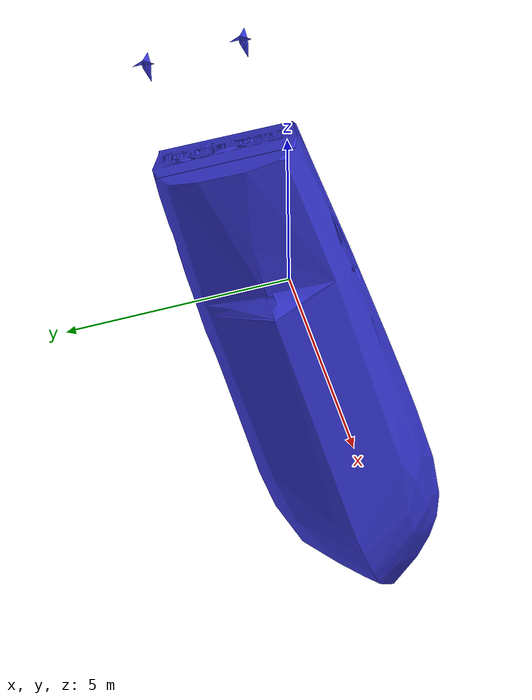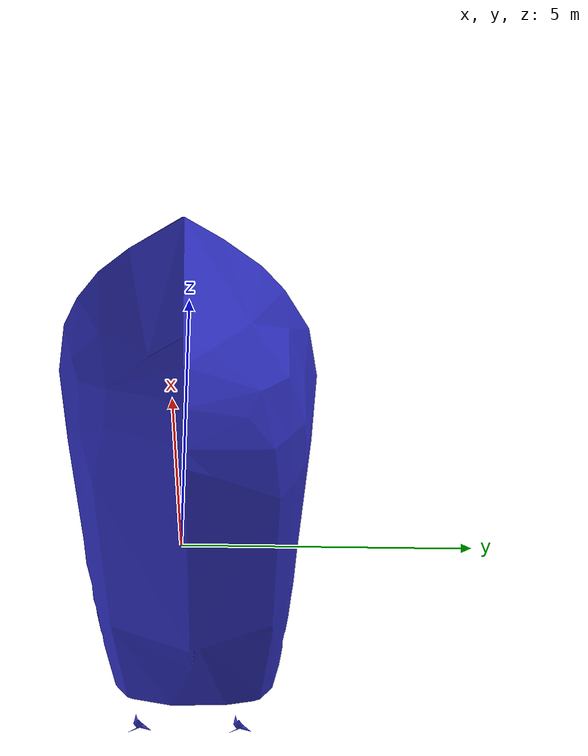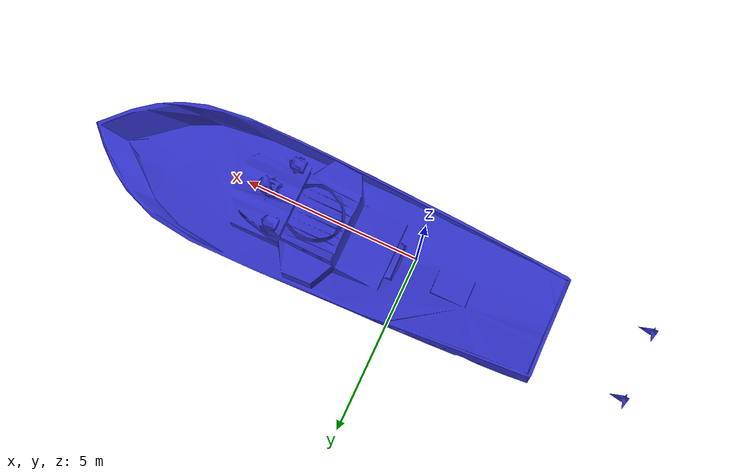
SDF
<?xml version="1.0" ?>
<sdf version="1.9">
  <model name="vessel_v3">
    <link name="base_link">
      <inertial>
        <mass>55000.0</mass>
        <pose>0 0 0.0 0 0 0</pose>
        <inertia>
          <ixx>146366.0</ixx>
          <iyy>805620.0</iyy>
          <izz>913838.0</izz>
          <ixy>0.0000001</ixy> <ixz>0.0000001</ixz> <iyz>0.0000001</iyz>
        </inertia>
      </inertial>

      <collision name="collision_hull">
        <pose>0 0 0.0 0 0 0</pose>
        <geometry>
          <box><size>13.11 5.27 2.04</size></box>
        </geometry>
      </collision>

      <visual name="visual_hull">
        <pose>0.0 0 0.0 0 0 0</pose>
        <geometry>
          <mesh>
          <uri>model://vessel_v3/meshes/vessel_simplified.stl</uri>
          <scale>0.0556 0.0556 0.0556</scale>
          </mesh>
        </geometry>
        <material>
          <ambient>0.2 0.2 0.8 1.0</ambient>
          <diffuse>0.2 0.2 0.8 1.0</diffuse>
        </material>
      </visual>
    </link>

    <link name="left_propeller">
      <pose>-6.6 -1.0 -0.8 0 0 0</pose>
      <inertial>
        <mass>0.5</mass>
        <inertia>
          <ixx>0.001</ixx><iyy>0.001</iyy><izz>0.001</izz>
          <ixy>0.000000001</ixy><ixz>0.0000000001</ixz><iyz>0.0000000001</iyz>
        </inertia>
      </inertial>

      <visual name="left_prop_visual">
        <pose>0.0 0.0 0.0 0 0 3.14</pose>
        <geometry>
          <mesh>
            <uri>model://vessel_v3/meshes/vessel_propeller_simplified.stl</uri>
            <scale>0.1 0.1 0.1</scale>
          </mesh>
        </geometry>
        <material>
          <ambient>0.2 0.2 0.8 1.0</ambient>
          <diffuse>0.2 0.2 0.8 1.0</diffuse>
        </material>
      </visual>
    </link>

    <link name="right_propeller">
      <pose>-6.6 1.0 -0.8 0 0 0</pose>
      <inertial>
        <mass>0.5</mass>
        <inertia>
          <ixx>0.001</ixx><iyy>0.001</iyy><izz>0.001</izz>
          <ixy>0.000000001</ixy><ixz>0.0000000001</ixz><iyz>0.0000000001</iyz>
        </inertia>
      </inertial>

      <visual name="right_prop_visual">
        <pose>0.0 0.0 0.0 0 0.0 3.14</pose>
        <geometry>
          <mesh>
            <uri>model://vessel_v3/meshes/vessel_propeller_simplified.stl</uri>
            <scale>0.1 0.1 0.1</scale>
          </mesh>
        </geometry>
        <material>
          <ambient>0.2 0.2 0.8 1.0</ambient>
          <diffuse>0.2 0.2 0.8 1.0</diffuse>
        </material>
      </visual>
    </link>

    <joint name="left_engine_joint" type="revolute">
      <parent>base_link</parent>
      <child>left_propeller</child>
      <axis>
        <xyz>1 0 0</xyz>

        <limit>
              <lower>-1e16</lower>
              <upper>1e16</upper>
              <effort>1e9</effort>
              <velocity>10000</velocity>
        </limit>

          <dynamics>
              <damping>0.0</damping>
              <friction>0.0</friction>
        </dynamics>

      </axis>
    </joint>

    <joint name="right_engine_joint" type="revolute">
      <parent>base_link</parent>
      <child>right_propeller</child>
      <axis>
        <xyz>1 0 0</xyz>

      <limit>
            <lower>-1e16</lower>
            <upper>1e16</upper>
            <effort>1e9</effort>
            <velocity>10000</velocity>
        </limit>

        <dynamics>
            <damping>0.0</damping>
            <friction>0.0</friction>
        </dynamics>

      </axis>
    </joint>

    <link name="gps_link">
      <pose>-3.0 0 2.5 0 0 0</pose>
       <inertial>
        <mass>0.1</mass>
        <inertia>
          <ixx>0.001</ixx><iyy>0.001</iyy><izz>0.001</izz>
          <ixy>0.000000001</ixy><ixz>0.0000000001</ixz><iyz>0.0000000001</iyz>
        </inertia>
      </inertial>

      <sensor name="gps_sensor" type="navsat">
        <always_on>1</always_on>
        <update_rate>10</update_rate> <topic>/vessel_v3/gps/fix</topic>
      </sensor>
    </link>

    <joint name="gps_joint" type="fixed">
      <parent>base_link</parent>
      <child>gps_link</child>
    </joint>

    <link name="sensors_link">
      <pose>6.0 0 1.8 0 0 0</pose>
      <inertial>
        <mass>0.5</mass>
        <inertia>
          <ixx>0.001</ixx><iyy>0.001</iyy><izz>0.001</izz>
          <ixy>0.000000001</ixy><ixz>0.0000000001</ixz><iyz>0.0000000001</iyz>
        </inertia>
      </inertial>

      <sensor name="camera" type="camera">
        <pose>0 0 0.2 0 0 0</pose> <always_on>1</always_on>
        <update_rate>30</update_rate>
        <topic>/vessel_v3/camera</topic>
        <camera>
          <horizontal_fov>1.396</horizontal_fov> <image>
            <width>800</width>
            <height>600</height>
            <format>R8G8B8</format>
          </image>
          <clip>
            <near>0.1</near>
            <far>150</far>
          </clip>
        </camera>
      </sensor>

      <sensor name="gpu_lidar" type="gpu_lidar">
        <pose>0 0 0.5 0 0 0</pose>
        <always_on>1</always_on>
        <visualize>true</visualize>
        <update_rate>10</update_rate>
        <topic>/vessel_v3/lidar</topic>
        <lidar>
          <scan>
            <horizontal>
              <samples>640</samples>
              <resolution>1</resolution>
              <min_angle>-3.14159</min_angle> <max_angle>3.14159</max_angle>
            </horizontal>
            <vertical>
              <samples>16</samples>
              <resolution>1</resolution>
              <min_angle>-0.261</min_angle> <max_angle>0.261</max_angle>
            </vertical>
          </scan>
          <range>
            <min>0.5</min>
            <max>100.0</max>
            <resolution>0.01</resolution>
          </range>
        </lidar>
      </sensor>
    </link>

    <link name="sonar_link">
      <pose>8.0 0 -2.5 0 1.57 0</pose>
      <inertial>
        <mass>0.5</mass>
        <inertia>
          <ixx>0.001</ixx><iyy>0.001</iyy><izz>0.001</izz>
          <ixy>0.000000001</ixy><ixz>0.0000000001</ixz><iyz>0.0000000001</iyz>
        </inertia>
      </inertial>
      <sensor name="sonar" type="gpu_lidar">
        <pose>0 0 0 0 0 0</pose>
        <always_on>1</always_on>
        <visualize>true</visualize>
        <update_rate>5</update_rate>
        <topic>/vessel_v3/sonar</topic>
        <lidar>
          <scan>
            <horizontal>
              <samples>32</samples>
              <resolution>1</resolution>
              <min_angle>-0.261</min_angle> <max_angle>0.261</max_angle>
            </horizontal>
            <vertical> <samples>32</samples>
              <resolution>1</resolution>
              <min_angle>-0.349</min_angle>
              <!-- 20 degrees -->
              <max_angle>0.349</max_angle>
            </vertical>
          </scan>
          <range>
            <min>0.5</min>
            <max>500.0</max>
            <resolution>0.1</resolution>
          </range>
        </lidar>
      </sensor>
    </link>

    <joint name="sensors_joint" type="fixed">
      <parent>base_link</parent>
      <child>sensors_link</child>
    </joint>

    <joint name="sonar_joint" type="fixed">
      <parent>base_link</parent>
      <child>sonar_link</child>
    </joint>

    <plugin filename="gz-sim-hydrodynamics-system" name="gz::sim::systems::Hydrodynamics">
      <link_name>base_link</link_name>
      <xU>-2750.0</xU>
      <xUabsU>-1500.0</xUabsU>
      <yV>-5500.0</yV>
      <yVabsV>-4028.0</yVabsV>
      <zW>-5500.0</zW>
      <zWabsW>-15000.0</zWabsW>
      <kP>-14636.0</kP>
      <kPabsP>-100000.0</kPabsP>
      <mQ>-80562.0</mQ>
      <mQabsQ>-200000.0</mQabsQ>
      <nR>-60922.0</nR>
      <nRabsR>-283000.0</nRabsR>
    </plugin>

    <plugin
      filename="libASVSurface.so"
      name="asv::Surface">
      <link_name>base_link</link_name>
      <hull_length>13.11</hull_length>
      <hull_radius>2.63</hull_radius>
      <fluid_density>1025</fluid_density>
      <points>
        <point>6.5 0.0 0</point>
        <point>6.0 2.0 0</point>
        <point>6.0 -2.0 0</point>
        <point>-6.0 2.0 0</point>
        <point> 0.0 2.5 0</point>
        <point> 0.0 -2.5 0</point>
        <point>-6.0 -2.0 0</point>
        <point>-6.5 0.0 0</point>

      </points>
      <wavefield>
        <topic>/wavefield/parameters</topic>
      </wavefield>
    </plugin>

    <plugin filename="gz-sim-pose-publisher-system" name="gz::sim::systems::PosePublisher">
      <publish_link_pose>true</publish_link_pose>
      <use_pose_vector_msg>true</use_pose_vector_msg>
      <publish_nested_model_pose>true</publish_nested_model_pose>
      <update_frequency>50</update_frequency>
    </plugin>

    <plugin filename="gz-sim-thruster-system" name="gz::sim::systems::Thruster">
      <namespace>vessel_v3</namespace>
      <joint_name>left_engine_joint</joint_name>
      <max_thrust_cmd>30000.0</max_thrust_cmd>
      <min_thrust_cmd>-20000.0</min_thrust_cmd>
      <thrust_coefficient>0.0126</thrust_coefficient>
      <velocity_control>false</velocity_control>
      <fluid_density>1025.0</fluid_density>
      <propeller_diameter>1.2</propeller_diameter>
    </plugin>

    <plugin filename="gz-sim-thruster-system" name="gz::sim::systems::Thruster">
      <namespace>vessel_v3</namespace>
      <joint_name>right_engine_joint</joint_name>
      <max_thrust_cmd>30000.0</max_thrust_cmd>
      <min_thrust_cmd>-20000.0</min_thrust_cmd>
      <velocity_control>false</velocity_control>
      <thrust_coefficient>0.0126</thrust_coefficient>
      <fluid_density>1025.0</fluid_density>
      <propeller_diameter>1.2</propeller_diameter>
    </plugin>

    <plugin filename="gz-sim-joint-state-publisher-system" name="gz::sim::systems::JointStatePublisher"/>

  </model>
</sdf>
